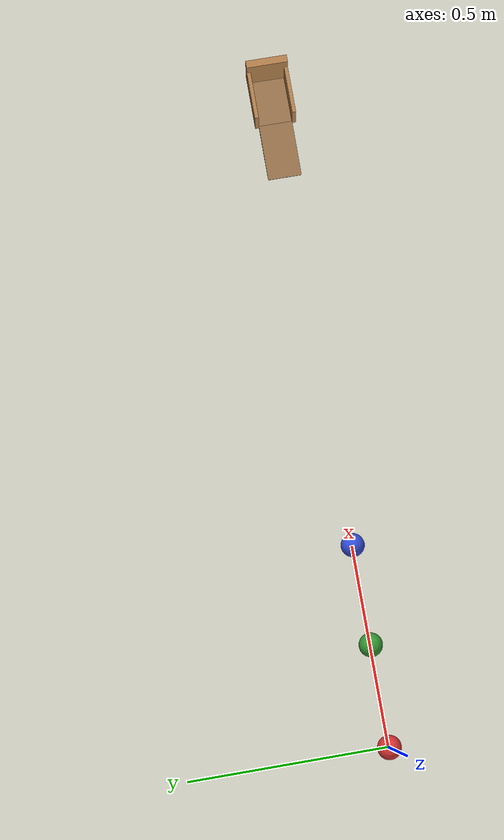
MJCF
<mujoco model="three_ball_chain_into_cup">
  <option timestep="0.002"/>
  <visual>
    <global offwidth="1280" offheight="720"/>
  </visual>
  <worldbody>
    <light name="sun" pos="0.8 -1 3" dir="0 0.3 -1" diffuse="0.9 0.9 0.9"/>
    <geom name="floor" type="plane" size="5 5 0.1" rgba="0.8 0.8 0.75 1"/>

    <body name="ball1" pos="0 0 0.03">
      <freejoint/>
      <geom name="ball1_geom" type="sphere" size="0.03" condim="6" friction="1 0.005 0.0021" rgba="0.85 0.2 0.2 1"/>
    </body>
    <body name="ball2" pos="0.25 0 0.03">
      <freejoint/>
      <geom name="ball2_geom" type="sphere" size="0.03" condim="6" friction="1 0.005 0.0021" rgba="0.2 0.6 0.2 1"/>
    </body>
    <body name="ball3" pos="0.5 0 0.03">
      <freejoint/>
      <geom name="ball3_geom" type="sphere" size="0.03" condim="6" friction="1 0.005 0.0021" rgba="0.2 0.3 0.85 1"/>
    </body>

    <body name="cup" pos="1.65 0 0">
      <geom name="cup_ramp" type="box" size="0.07524 0.045 0.005" pos="-0.0746 0 0.001016" euler="0 -4.574 0" rgba="0.6 0.45 0.3 1"/>
      <geom name="cup_base" type="box" size="0.075 0.055 0.0025" pos="0.075 0 0.0025" rgba="0.6 0.45 0.3 1"/>
      <geom name="cup_back" type="box" size="0.01 0.055 0.05" pos="0.14 0 0.05" priority="1" condim="3" friction="0.1 0.005 0.0001" rgba="0.7 0.5 0.3 1"/>
      <geom name="cup_side_left" type="box" size="0.075 0.005 0.035" pos="0.075 0.05 0.035" priority="1" condim="3" friction="0.1 0.005 0.0001" rgba="0.7 0.5 0.3 1"/>
      <geom name="cup_side_right" type="box" size="0.075 0.005 0.035" pos="0.075 -0.05 0.035" priority="1" condim="3" friction="0.1 0.005 0.0001" rgba="0.7 0.5 0.3 1"/>
    </body>
  </worldbody>

  <contact>
    <exclude name="ex12" body1="ball1" body2="ball2"/>
    <exclude name="ex23" body1="ball2" body2="ball3"/>
    <exclude name="ex13" body1="ball1" body2="ball3"/>
    <pair name="p12" geom1="ball1_geom" geom2="ball2_geom" condim="1" solref="-60000 -5"/>
    <pair name="p23" geom1="ball2_geom" geom2="ball3_geom" condim="1" solref="-60000 -5"/>
    <pair name="p13" geom1="ball1_geom" geom2="ball3_geom" condim="1" solref="-60000 -5"/>
  </contact>

  <keyframe>
    <key name="start" qpos="0 0 0.03 1 0 0 0 0.25 0 0.03 1 0 0 0 0.5 0 0.03 1 0 0 0" qvel="3 0 0 0 100 0 0 0 0 0 0 0 0 0 0 0 0 0"/>
  </keyframe>
</mujoco>
